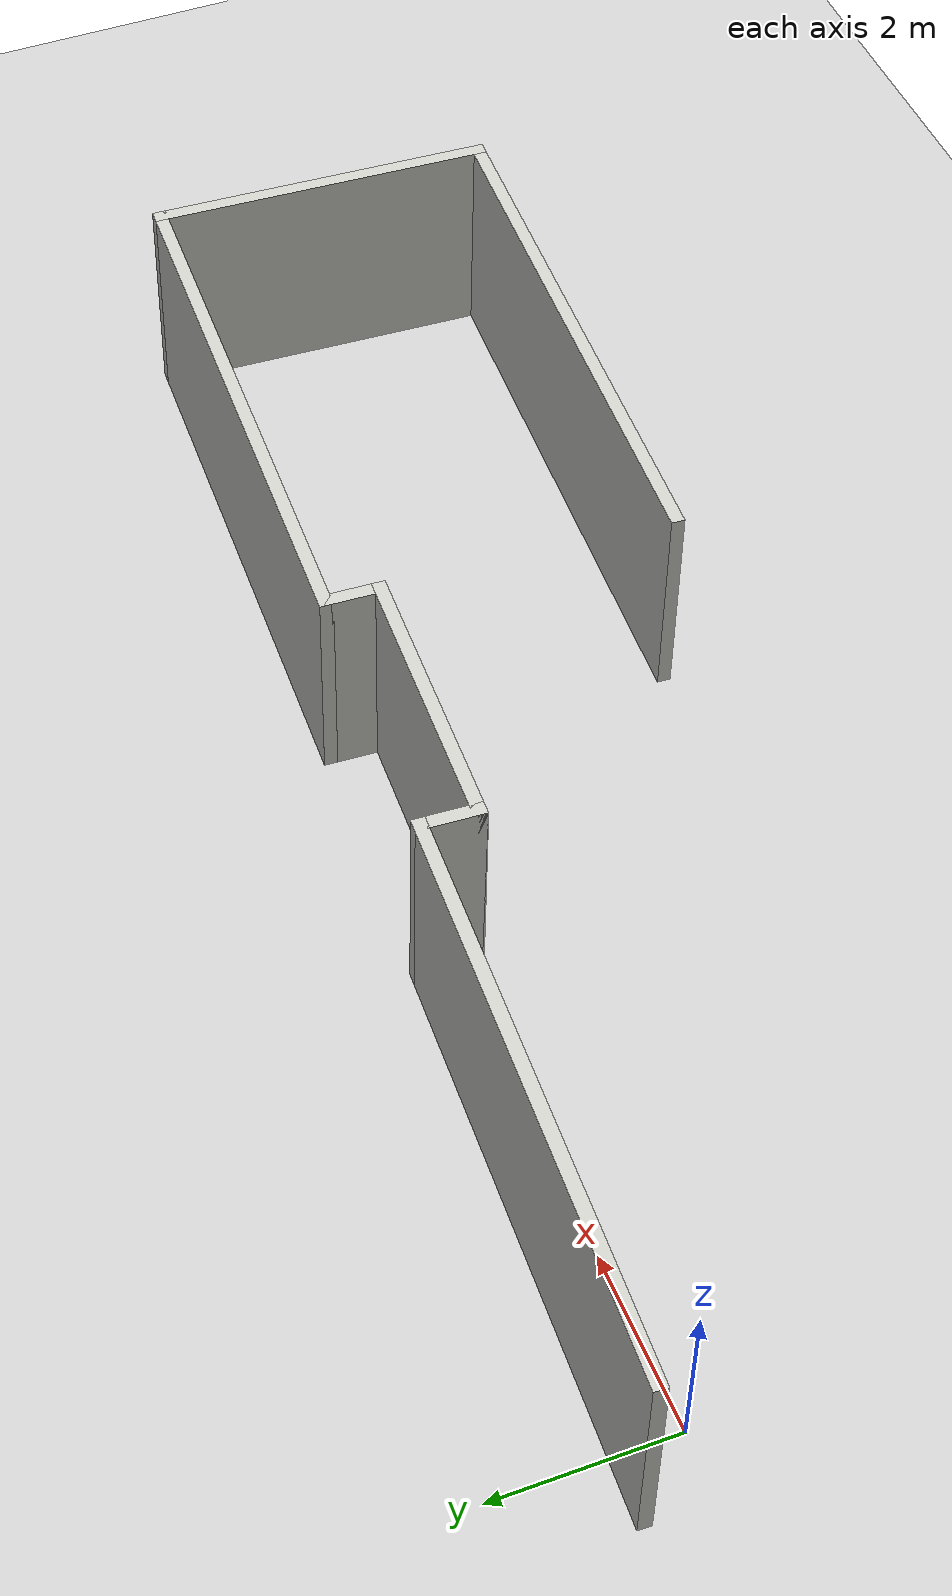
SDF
<sdf version="1.6">
 <world name="default">
  <light name="sun" type="directional">
   <pose>0 0 10 0 -0 0</pose>
   <diffuse>0.8 0.8 0.8 1</diffuse>
   <specular>0.1 0.1 0.1 1</specular>
   <attenuation>
    <range>1000</range>
    <constant>0.9</constant>
    <linear>0.01</linear>
    <quadratic>0.001</quadratic>
   </attenuation>
   <direction>-0.5 0.5 -1</direction>
  </light>
  <model name="ground_plane">
   <static>1</static>
   <link name="link">
    <collision name="collision">
     <geometry><plane><normal>0 0 1</normal><size>100 100</size></plane></geometry>
     <surface><friction><ode><mu>100</mu><mu2>50</mu2></ode></friction></surface>
    </collision>
    <visual name="visual">
     <cast_shadows>0</cast_shadows>
     <geometry><plane><normal>0 0 1</normal><size>100 100</size></plane></geometry>
     <material>
      <script><uri>file://media/materials/scripts/gazebo.material</uri><name>Gazebo/Grey</name></script>
     </material>
    </visual>
   </link>
  </model>
  <gravity>0 0 -9.8</gravity>
  <magnetic_field>6e-06 2.3e-05 -4.2e-05</magnetic_field>
  <atmosphere type="adiabatic"/>
  <physics name="default_physics" default="0" type="ode">
   <max_step_size>0.001</max_step_size>
   <real_time_factor>1</real_time_factor>
   <real_time_update_rate>1000</real_time_update_rate>
  </physics>
  <scene><ambient>0.4 0.4 0.4 1</ambient><background>0.7 0.7 0.7 1</background><shadows>1</shadows></scene>
  <spherical_coordinates>
   <surface_model>EARTH_WGS84</surface_model>
   <latitude_deg>0</latitude_deg>
   <longitude_deg>0</longitude_deg>
   <elevation>0</elevation>
   <heading_deg>0</heading_deg>
  </spherical_coordinates>
  <model name="simple_wall">
   <pose>7.12055 -1.61645 0 0 -0 3.08703</pose>
   <link name="Wall_10">
    <collision name="Wall_10_Collision">
     <geometry><box><size>6.5 0.15 2.5</size></box></geometry>
     <pose>0 0 1.25 0 -0 0</pose>
    </collision>
    <visual name="Wall_10_Visual">
     <pose>0 0 1.25 0 -0 0</pose>
     <geometry><box><size>6.5 0.15 2.5</size></box></geometry>
     <material>
      <script><uri>file://media/materials/scripts/gazebo.material</uri><name>Gazebo/CeilingTiled</name></script>
      <ambient>1 1 1 1</ambient>
     </material>
    </visual>
    <pose>-4.725 -1.925 0 0 -0 3.14159</pose>
   </link>
   <link name="Wall_11">
    <collision name="Wall_11_Collision">
     <geometry><box><size>4 0.15 2.5</size></box></geometry>
     <pose>0 0 1.25 0 -0 0</pose>
    </collision>
    <visual name="Wall_11_Visual">
     <pose>0 0 1.25 0 -0 0</pose>
     <geometry><box><size>4 0.15 2.5</size></box></geometry>
     <material>
      <script><uri>file://media/materials/scripts/gazebo.material</uri><name>Gazebo/CeilingTiled</name></script>
      <ambient>1 1 1 1</ambient>
     </material>
    </visual>
    <pose>-7.9 0 0 0 -0 1.5708</pose>
   </link>
   <link name="Wall_12">
    <collision name="Wall_12_Collision">
     <geometry><box><size>6.5 0.15 2.5</size></box></geometry>
     <pose>0 0 1.25 0 -0 0</pose>
    </collision>
    <visual name="Wall_12_Visual">
     <pose>0 0 1.25 0 -0 0</pose>
     <geometry><box><size>6.5 0.15 2.5</size></box></geometry>
     <material>
      <script><uri>file://media/materials/scripts/gazebo.material</uri><name>Gazebo/CeilingTiled</name></script>
      <ambient>1 1 1 1</ambient>
     </material>
    </visual>
    <pose>-4.725 1.925 0 0 -0 0</pose>
   </link>
   <link name="Wall_6">
    <collision name="Wall_6_Collision">
     <geometry><box><size>6.5 0.15 2.5</size></box></geometry>
     <pose>0 0 1.25 0 -0 0</pose>
    </collision>
    <visual name="Wall_6_Visual">
     <pose>0 0 1.25 0 -0 0</pose>
     <geometry><box><size>6.5 0.15 2.5</size></box></geometry>
     <material>
      <script><uri>file://media/materials/scripts/gazebo.material</uri><name>Gazebo/CeilingTiled</name></script>
      <ambient>1 1 1 1</ambient>
     </material>
    </visual>
    <pose>4.725 -1.925 0 0 -0 3.14159</pose>
   </link>
   <link name="Wall_7">
    <collision name="Wall_7_Collision">
     <geometry><box><size>0.75 0.15 2.5</size></box></geometry>
     <pose>0 0 1.25 0 -0 0</pose>
    </collision>
    <visual name="Wall_7_Visual">
     <pose>0 0 1.25 0 -0 0</pose>
     <geometry><box><size>0.75 0.15 2.5</size></box></geometry>
     <material>
      <script><uri>file://media/materials/scripts/gazebo.material</uri><name>Gazebo/CeilingTiled</name></script>
      <ambient>1 1 1 1</ambient>
     </material>
    </visual>
    <pose>1.55 -1.625 0 0 -0 1.5708</pose>
   </link>
   <link name="Wall_8">
    <collision name="Wall_8_Collision">
     <geometry><box><size>3.25 0.15 2.5</size></box></geometry>
     <pose>0 0 1.25 0 -0 0</pose>
    </collision>
    <visual name="Wall_8_Visual">
     <pose>0 0 1.25 0 -0 0</pose>
     <geometry><box><size>3.25 0.15 2.5</size></box></geometry>
     <material>
      <script><uri>file://media/materials/scripts/gazebo.material</uri><name>Gazebo/CeilingTiled</name></script>
      <ambient>1 1 1 1</ambient>
     </material>
    </visual>
    <pose>0 -1.325 0 0 -0 3.14159</pose>
   </link>
   <link name="Wall_9">
    <collision name="Wall_9_Collision">
     <geometry><box><size>0.75 0.15 2.5</size></box></geometry>
     <pose>0 0 1.25 0 -0 0</pose>
    </collision>
    <visual name="Wall_9_Visual">
     <pose>0 0 1.25 0 -0 0</pose>
     <geometry><box><size>0.75 0.15 2.5</size></box></geometry>
     <material>
      <script><uri>file://media/materials/scripts/gazebo.material</uri><name>Gazebo/CeilingTiled</name></script>
      <ambient>1 1 1 1</ambient>
     </material>
    </visual>
    <pose>-1.55 -1.625 0 0 0 -1.5708</pose>
   </link>
   <static>1</static>
  </model>
 </world>
</sdf>
